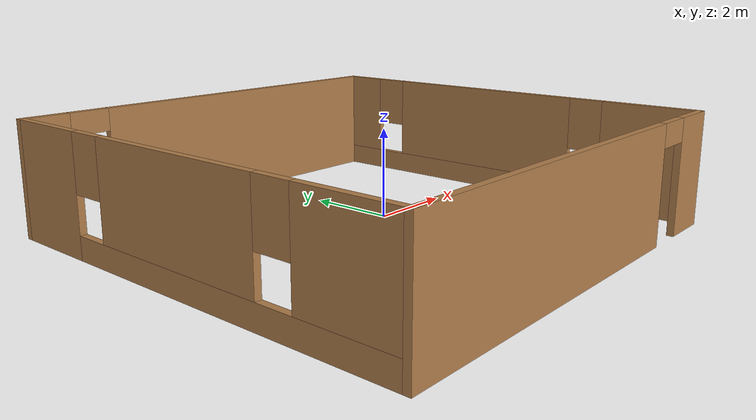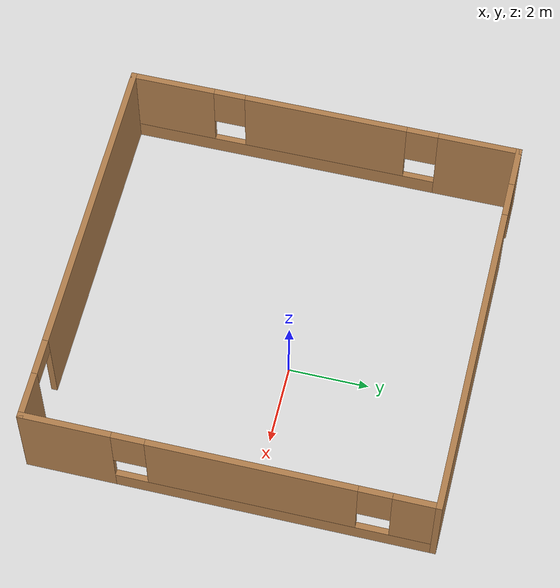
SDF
<?xml version='1.0'?>
<sdf version='1.6'>
  <model name='Kaushik_Building'>
    <pose frame=''>-1.04091 -0.520911 0 0 -0 0</pose>
    <link name='Wall_10'>
      <pose frame=''>8.6e-05 4.92509 0 0 -0 3.14159</pose>
      <visual name='Wall_10_Visual_0'>
        <pose frame=''>-0.981254 0 1.25 0 -0 0</pose>
        <geometry>
          <box>
            <size>8.03749 0.15 2.5</size>
          </box>
        </geometry>
        <material>
          <script>
            <uri>file://media/materials/scripts/gazebo.material</uri>
            <name>Gazebo/Wood</name>
          </script>
          <ambient>1 0.286275 0.145098 1</ambient>
        </material>
        <meta>
          <layer>0</layer>
        </meta>
      </visual>
      <collision name='Wall_10_Collision_0'>
        <geometry>
          <box>
            <size>8.03749 0.15 2.5</size>
          </box>
        </geometry>
        <pose frame=''>-0.981254 0 1.25 0 -0 0</pose>
      </collision>
      <visual name='Wall_10_Visual_1'>
        <pose frame=''>4.46875 0 1.25 0 -0 0</pose>
        <geometry>
          <box>
            <size>1.06251 0.15 2.5</size>
          </box>
        </geometry>
        <material>
          <script>
            <uri>file://media/materials/scripts/gazebo.material</uri>
            <name>Gazebo/Wood</name>
          </script>
          <ambient>1 0.286275 0.145098 1</ambient>
        </material>
        <meta>
          <layer>0</layer>
        </meta>
      </visual>
      <collision name='Wall_10_Collision_1'>
        <geometry>
          <box>
            <size>1.06251 0.15 2.5</size>
          </box>
        </geometry>
        <pose frame=''>4.46875 0 1.25 0 -0 0</pose>
      </collision>
      <visual name='Wall_10_Visual_2'>
        <pose frame=''>3.48749 0 2.25 0 -0 0</pose>
        <geometry>
          <box>
            <size>0.9 0.15 0.5</size>
          </box>
        </geometry>
        <material>
          <script>
            <uri>file://media/materials/scripts/gazebo.material</uri>
            <name>Gazebo/Wood</name>
          </script>
          <ambient>1 0.286275 0.145098 1</ambient>
        </material>
        <meta>
          <layer>0</layer>
        </meta>
      </visual>
      <collision name='Wall_10_Collision_2'>
        <geometry>
          <box>
            <size>0.9 0.15 0.5</size>
          </box>
        </geometry>
        <pose frame=''>3.48749 0 2.25 0 -0 0</pose>
      </collision>
    </link>
    <link name='Wall_12'>
      <pose frame=''>-4.92491 8.8e-05 0 0 0 -1.5708</pose>
      <visual name='Wall_12_Visual_0'>
        <pose frame=''>-3.95142 0 1.25 0 -0 0</pose>
        <geometry>
          <box>
            <size>2.09715 0.15 2.5</size>
          </box>
        </geometry>
        <material>
          <script>
            <uri>file://media/materials/scripts/gazebo.material</uri>
            <name>Gazebo/Wood</name>
          </script>
          <ambient>1 0.286275 0.145098 1</ambient>
        </material>
        <meta>
          <layer>0</layer>
        </meta>
      </visual>
      <collision name='Wall_12_Collision_0'>
        <geometry>
          <box>
            <size>2.09715 0.15 2.5</size>
          </box>
        </geometry>
        <pose frame=''>-3.95142 0 1.25 0 -0 0</pose>
      </collision>
      <visual name='Wall_12_Visual_1'>
        <pose frame=''>1.04858 0 0.25 0 -0 0</pose>
        <geometry>
          <box>
            <size>7.90285 0.15 0.5</size>
          </box>
        </geometry>
        <material>
          <script>
            <uri>file://media/materials/scripts/gazebo.material</uri>
            <name>Gazebo/Wood</name>
          </script>
          <ambient>1 0.286275 0.145098 1</ambient>
        </material>
        <meta>
          <layer>0</layer>
        </meta>
      </visual>
      <collision name='Wall_12_Collision_1'>
        <geometry>
          <box>
            <size>7.90285 0.15 0.5</size>
          </box>
        </geometry>
        <pose frame=''>1.04858 0 0.25 0 -0 0</pose>
      </collision>
      <visual name='Wall_12_Visual_2'>
        <pose frame=''>-0.03675 0 1.5 0 -0 0</pose>
        <geometry>
          <box>
            <size>4.1322 0.15 2</size>
          </box>
        </geometry>
        <material>
          <script>
            <uri>file://media/materials/scripts/gazebo.material</uri>
            <name>Gazebo/Wood</name>
          </script>
          <ambient>1 0.286275 0.145098 1</ambient>
        </material>
        <meta>
          <layer>0</layer>
        </meta>
      </visual>
      <collision name='Wall_12_Collision_2'>
        <geometry>
          <box>
            <size>4.1322 0.15 2</size>
          </box>
        </geometry>
        <pose frame=''>-0.03675 0 1.5 0 -0 0</pose>
      </collision>
      <visual name='Wall_12_Visual_3'>
        <pose frame=''>3.91467 0 1.5 0 -0 0</pose>
        <geometry>
          <box>
            <size>2.17065 0.15 2</size>
          </box>
        </geometry>
        <material>
          <script>
            <uri>file://media/materials/scripts/gazebo.material</uri>
            <name>Gazebo/Wood</name>
          </script>
          <ambient>1 0.286275 0.145098 1</ambient>
        </material>
        <meta>
          <layer>0</layer>
        </meta>
      </visual>
      <collision name='Wall_12_Collision_3'>
        <geometry>
          <box>
            <size>2.17065 0.15 2</size>
          </box>
        </geometry>
        <pose frame=''>3.91467 0 1.5 0 -0 0</pose>
      </collision>
      <visual name='Wall_12_Visual_4'>
        <pose frame=''>-2.50285 0 1.9 0 -0 0</pose>
        <geometry>
          <box>
            <size>0.8 0.15 1.2</size>
          </box>
        </geometry>
        <material>
          <script>
            <uri>file://media/materials/scripts/gazebo.material</uri>
            <name>Gazebo/Wood</name>
          </script>
          <ambient>1 0.286275 0.145098 1</ambient>
        </material>
        <meta>
          <layer>0</layer>
        </meta>
      </visual>
      <collision name='Wall_12_Collision_4'>
        <geometry>
          <box>
            <size>0.8 0.15 1.2</size>
          </box>
        </geometry>
        <pose frame=''>-2.50285 0 1.9 0 -0 0</pose>
      </collision>
      <visual name='Wall_12_Visual_5'>
        <pose frame=''>2.42935 0 1.9 0 -0 0</pose>
        <geometry>
          <box>
            <size>0.8 0.15 1.2</size>
          </box>
        </geometry>
        <material>
          <script>
            <uri>file://media/materials/scripts/gazebo.material</uri>
            <name>Gazebo/Wood</name>
          </script>
          <ambient>1 0.286275 0.145098 1</ambient>
        </material>
        <meta>
          <layer>0</layer>
        </meta>
      </visual>
      <collision name='Wall_12_Collision_5'>
        <geometry>
          <box>
            <size>0.8 0.15 1.2</size>
          </box>
        </geometry>
        <pose frame=''>2.42935 0 1.9 0 -0 0</pose>
      </collision>
    </link>
    <link name='Wall_3'>
      <pose frame=''>-8.6e-05 -4.92509 0 0 -0 0</pose>
      <visual name='Wall_3_Visual_0'>
        <pose frame=''>-1.04603 0 1.25 0 -0 0</pose>
        <geometry>
          <box>
            <size>7.90794 0.15 2.5</size>
          </box>
        </geometry>
        <material>
          <script>
            <uri>file://media/materials/scripts/gazebo.material</uri>
            <name>Gazebo/Wood</name>
          </script>
          <ambient>1 0.286275 0.145098 1</ambient>
        </material>
        <meta>
          <layer>0</layer>
        </meta>
      </visual>
      <collision name='Wall_3_Collision_0'>
        <geometry>
          <box>
            <size>7.90794 0.15 2.5</size>
          </box>
        </geometry>
        <pose frame=''>-1.04603 0 1.25 0 -0 0</pose>
      </collision>
      <visual name='Wall_3_Visual_1'>
        <pose frame=''>4.40397 0 1.25 0 -0 0</pose>
        <geometry>
          <box>
            <size>1.19206 0.15 2.5</size>
          </box>
        </geometry>
        <material>
          <script>
            <uri>file://media/materials/scripts/gazebo.material</uri>
            <name>Gazebo/Wood</name>
          </script>
          <ambient>1 0.286275 0.145098 1</ambient>
        </material>
        <meta>
          <layer>0</layer>
        </meta>
      </visual>
      <collision name='Wall_3_Collision_1'>
        <geometry>
          <box>
            <size>1.19206 0.15 2.5</size>
          </box>
        </geometry>
        <pose frame=''>4.40397 0 1.25 0 -0 0</pose>
      </collision>
      <visual name='Wall_3_Visual_2'>
        <pose frame=''>3.35793 0 2.25 0 -0 0</pose>
        <geometry>
          <box>
            <size>0.9 0.15 0.5</size>
          </box>
        </geometry>
        <material>
          <script>
            <uri>file://media/materials/scripts/gazebo.material</uri>
            <name>Gazebo/Wood</name>
          </script>
          <ambient>1 0.286275 0.145098 1</ambient>
        </material>
        <meta>
          <layer>0</layer>
        </meta>
      </visual>
      <collision name='Wall_3_Collision_2'>
        <geometry>
          <box>
            <size>0.9 0.15 0.5</size>
          </box>
        </geometry>
        <pose frame=''>3.35793 0 2.25 0 -0 0</pose>
      </collision>
    </link>
    <link name='Wall_8'>
      <pose frame=''>4.925 0 0 0 -0 1.57078</pose>
      <visual name='Wall_8_Visual_0'>
        <pose frame=''>-3.87972 0 1.25 0 -0 0</pose>
        <geometry>
          <box>
            <size>2.24057 0.15 2.5</size>
          </box>
        </geometry>
        <material>
          <script>
            <uri>file://media/materials/scripts/gazebo.material</uri>
            <name>Gazebo/Wood</name>
          </script>
          <ambient>1 0.286275 0.145098 1</ambient>
        </material>
        <meta>
          <layer>0</layer>
        </meta>
      </visual>
      <collision name='Wall_8_Collision_0'>
        <geometry>
          <box>
            <size>2.24057 0.15 2.5</size>
          </box>
        </geometry>
        <pose frame=''>-3.87972 0 1.25 0 -0 0</pose>
      </collision>
      <visual name='Wall_8_Visual_1'>
        <pose frame=''>1.12028 0 0.25 0 -0 0</pose>
        <geometry>
          <box>
            <size>7.75943 0.15 0.5</size>
          </box>
        </geometry>
        <material>
          <script>
            <uri>file://media/materials/scripts/gazebo.material</uri>
            <name>Gazebo/Wood</name>
          </script>
          <ambient>1 0.286275 0.145098 1</ambient>
        </material>
        <meta>
          <layer>0</layer>
        </meta>
      </visual>
      <collision name='Wall_8_Collision_1'>
        <geometry>
          <box>
            <size>7.75943 0.15 0.5</size>
          </box>
        </geometry>
        <pose frame=''>1.12028 0 0.25 0 -0 0</pose>
      </collision>
      <visual name='Wall_8_Visual_2'>
        <pose frame=''>0.543972 0 1.5 0 -0 0</pose>
        <geometry>
          <box>
            <size>5.0068 0.15 2</size>
          </box>
        </geometry>
        <material>
          <script>
            <uri>file://media/materials/scripts/gazebo.material</uri>
            <name>Gazebo/Wood</name>
          </script>
          <ambient>1 0.286275 0.145098 1</ambient>
        </material>
        <meta>
          <layer>0</layer>
        </meta>
      </visual>
      <collision name='Wall_8_Collision_2'>
        <geometry>
          <box>
            <size>5.0068 0.15 2</size>
          </box>
        </geometry>
        <pose frame=''>0.543972 0 1.5 0 -0 0</pose>
      </collision>
      <visual name='Wall_8_Visual_3'>
        <pose frame=''>4.42369 0 1.5 0 -0 0</pose>
        <geometry>
          <box>
            <size>1.15263 0.15 2</size>
          </box>
        </geometry>
        <material>
          <script>
            <uri>file://media/materials/scripts/gazebo.material</uri>
            <name>Gazebo/Wood</name>
          </script>
          <ambient>1 0.286275 0.145098 1</ambient>
        </material>
        <meta>
          <layer>0</layer>
        </meta>
      </visual>
      <collision name='Wall_8_Collision_3'>
        <geometry>
          <box>
            <size>1.15263 0.15 2</size>
          </box>
        </geometry>
        <pose frame=''>4.42369 0 1.5 0 -0 0</pose>
      </collision>
      <visual name='Wall_8_Visual_4'>
        <pose frame=''>-2.35943 0 1.9 0 -0 0</pose>
        <geometry>
          <box>
            <size>0.8 0.15 1.2</size>
          </box>
        </geometry>
        <material>
          <script>
            <uri>file://media/materials/scripts/gazebo.material</uri>
            <name>Gazebo/Wood</name>
          </script>
          <ambient>1 0.286275 0.145098 1</ambient>
        </material>
        <meta>
          <layer>0</layer>
        </meta>
      </visual>
      <collision name='Wall_8_Collision_4'>
        <geometry>
          <box>
            <size>0.8 0.15 1.2</size>
          </box>
        </geometry>
        <pose frame=''>-2.35943 0 1.9 0 -0 0</pose>
      </collision>
      <visual name='Wall_8_Visual_5'>
        <pose frame=''>3.44737 0 1.9 0 -0 0</pose>
        <geometry>
          <box>
            <size>0.8 0.15 1.2</size>
          </box>
        </geometry>
        <material>
          <script>
            <uri>file://media/materials/scripts/gazebo.material</uri>
            <name>Gazebo/Wood</name>
          </script>
          <ambient>1 0.286275 0.145098 1</ambient>
        </material>
        <meta>
          <layer>0</layer>
        </meta>
      </visual>
      <collision name='Wall_8_Collision_5'>
        <geometry>
          <box>
            <size>0.8 0.15 1.2</size>
          </box>
        </geometry>
        <pose frame=''>3.44737 0 1.9 0 -0 0</pose>
      </collision>
    </link>
    <static>1</static>
  </model>
</sdf>
